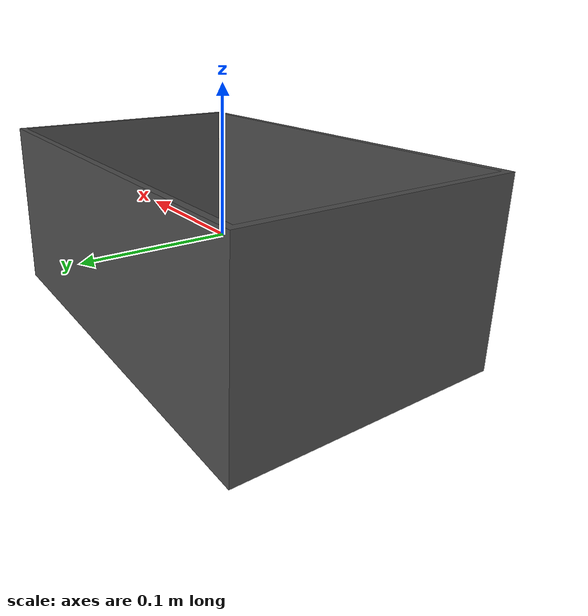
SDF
<?xml version="1.0" ?>

<sdf version="1.5">
  <model name="industrial_bin">
    <static>false</static>
    <link name="leaf_cell_link">
      <collision name="collision">
        <geometry>
      		 <mesh>
            	<uri>model://industrial_bin/meshes/industrial_bin.stl</uri>
          	</mesh>
        </geometry>
		<surface>
			<friction>
				<ode>
					<mu>0.98</mu>
					<mu2>0.98</mu2>
				</ode>
			</friction>
		</surface>
      </collision>
      <visual name="visual">
        <geometry>
          <mesh>
            <uri>model://industrial_bin/meshes/industrial_bin.dae</uri>
          </mesh>
        </geometry>
        <material>
		    <script>
		        <uri>file://media/materials/scripts/gazebo.material</uri>
		        <name>Gazebo/DarkGrey</name>
		    </script>
        </material>
      </visual>
	  <inertial>
			<pose>0.0 0.0 0.0 0.0 0.0 0.0</pose>
		    <mass>1.0</mass>
		    <inertia>
     		  <ixx>0.0039</ixx>
		      <iyy>0.0082</iyy>
		      <izz>0.0097083</izz>
		      <ixy>0.0</ixy>
		      <ixz>0.0</ixz>
		      <iyz>0.0</iyz>
		    </inertia>
	  </inertial>
	</link>
  </model>
</sdf>
